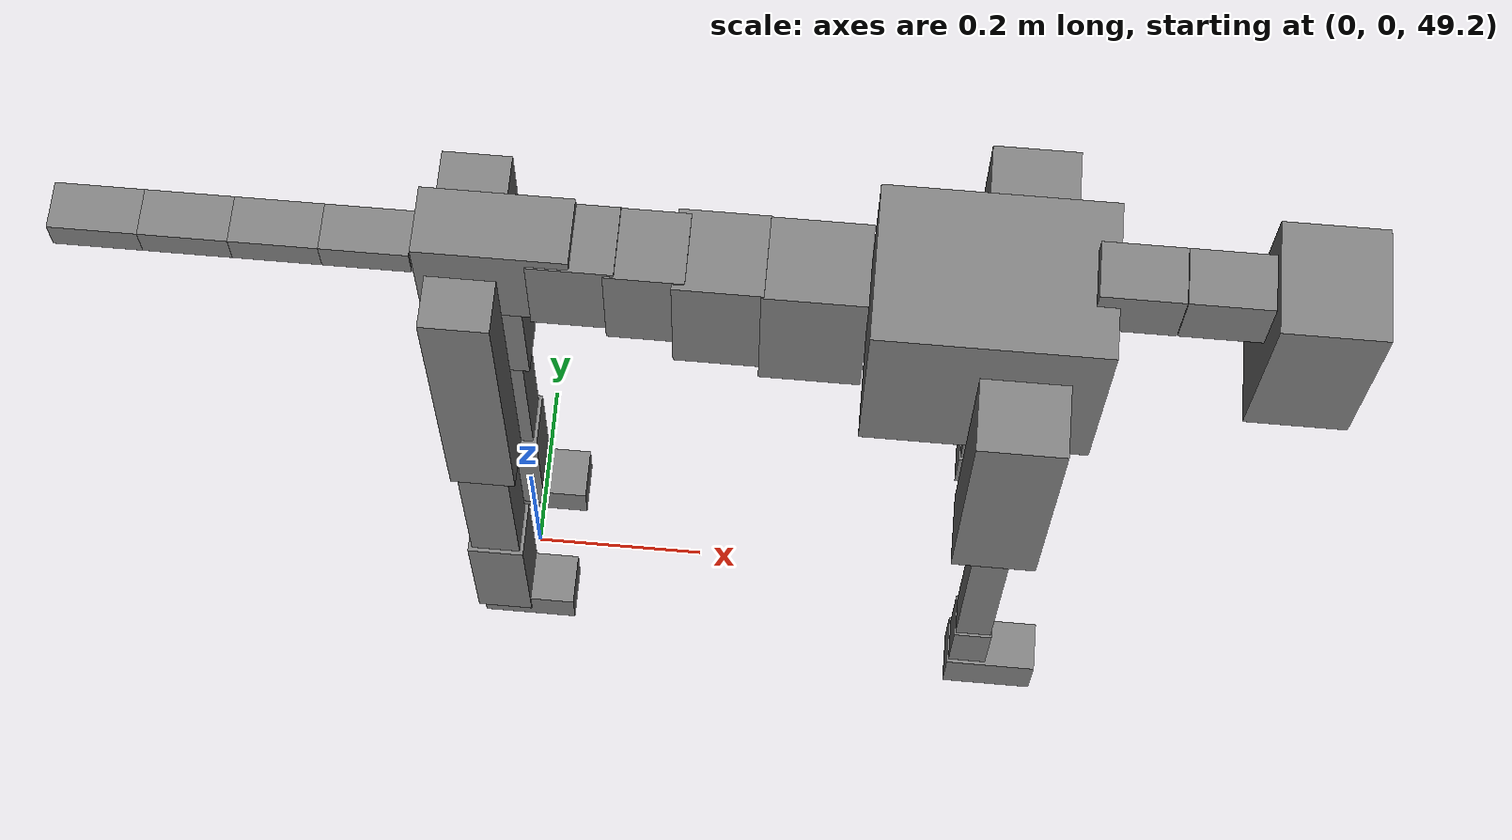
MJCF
<mujoco model="dog">

    <default>
        <joint armature="0.02" stiffness="1" damping="0.2" limited="true"/>
        <geom condim="3" friction="1 0.05 0.05" margin="0.01"/>
        <motor ctrllimited="true" ctrlrange="-1.0 1.0" forcelimited="true" gear="50"/>
    </default>

    <compiler inertiafromgeom="true" angle="radian"/>

    <option timestep="0.016" iterations="50" tolerance="1e-10" solver="Newton" jacobian="dense" cone="pyramidal"/>

    <size nconmax="20000" njmax="60000" nstack="5000000"/>
    <visual>
        <map force="0.1" zfar="30"/>
        <rgba haze="0.15 0.25 0.35 1"/>
        <quality shadowsize="2048"/>
        <global offwidth="800" offheight="800"/>
    </visual>

    <asset>
        <texture type="skybox" builtin="gradient" rgb1="0.3 0.5 0.7" rgb2="0 0 0" width="512" height="512"/>
        <texture name="texplane" type="2d" builtin="checker" rgb1=".2 .3 .4" rgb2=".1 0.15 0.2" width="512" height="512"
                 mark="cross" markrgb=".8 .8 .8"/>
        <texture name="texgeom" type="cube" builtin="flat" mark="cross" width="127" height="1278" rgb1="0.8 0.6 0.4"
                 rgb2="0.8 0.6 0.4" markrgb="1 1 1" random="0.01"/>

        <material name="matplane" reflectance="0.3" texture="texplane" texrepeat="1 1" texuniform="true"/>
        <material name="matgeom" texture="texgeom" texuniform="true" rgba="0.8 0.6 .4 1"/>
    </asset>

    <worldbody>
        <geom name="floor" pos="0 0 0" size="0 0 .25" type="plane" material="matplane" condim="3"/>

        <light directional="false" diffuse=".2 .2 .2" specular="0 0 0" pos="0 0 5" dir="0 0 -1" castshadow="false"/>
        <light mode="targetbodycom" target="torso" directional="false" diffuse=".8 .8 .8" specular="0.3 0.3 0.3"
               pos="0 0 4.0" dir="0 0 -1"/>

        <body name="root" pos="0 0 50">
            <freejoint name="root_1"/>
            <geom type="box" pos="0 0 -0.02" size="0.0774  0.0358  0.063" density="2030"/>

            <body name="spine1" pos="0.054 0 0">
                <joint name="spine1_y" axis="0 1 0" range="0 0.7" limited="true"/>
                <geom type="box" pos="0.02375 0 -0.03" size="0.04375  0.0375  0.05985" density="2030"/>

                <body name="spine2" pos="0.0612 0 0">
                    <joint name="spine2_y" axis="0 1 0" range="-0.15 0.15" limited="true"/>
                    <geom type="box" pos="0.03555  0  -0.04" size="0.04055  0.039  0.06615" density="2030"/>

                    <body name="spine3" pos="0.0730 0 0">
                        <joint name="spine3_y" axis="0 1 0" range="-0.15 0.15" limited="true"/>
                        <geom type="box" pos="0.03555  0  -0.057" size="0.04555  0.0445  0.081" density="2030"/>

                        <body name="spine4" pos="0.0780 0 0">
                            <joint name="spine4_y" axis="0 1 0" range="-0.15 0.15" limited="true"/>
                            <geom type="box" pos="0.05265  0  -0.07" size="0.05265  0.045  0.09135" density="2030"/>

                            <body name="torso" pos="0.1082 0 0">
                                <joint name="torso_y" axis="0 1 0" range="-0.15 0.15" limited="true"/>
                                <geom type="box" pos="0.11925  0  -0.085" size="0.11925  0.085  0.11745"
                                      density="2030"/>

                                <body name="neck1" pos="0.2160  0   0.0180">
                                    <joint name="neck1_y" axis="0 1 0" range="-1.2  -1" limited="true"/>
                                    <geom type="box" pos="0.0423  0  0" size="0.0423  0.03  0.036" density="2325"/>

                                    <body name="neck2" pos="0.0853  0  0">
                                        <joint name="neck2_y" axis="0 1 0" range="0.1  0" limited="true"/>
                                        <geom type="box" pos="0.0423  0  0" size="0.0423  0.03  0.036" density="2325"/>

                                        <body name="head" pos="0.0853  0  0">
                                            <joint name="head_y" axis="0 1 0" range="-0.3  -0.2" limited="true"/>
                                            <geom type="box" pos="0.0531  0  -0.055" size="0.0531  0.06  0.1044"
                                                  density="4030"/>

                                        </body>
                                    </body>
                                </body>

                                <body name="front_shoulder" pos="0.156  0   -0.0480">
                                    <joint name="front_shoulder_y" axis="0 1 0" range="-1 1.5" limited="true"/>
                                    <geom type="box" pos="0 0.13 -0.1276" size="0.0451  0.0385  0.1542" density="1158"/>
                                    <geom type="box" pos="0 -0.13 -0.1276" size="0.0451  0.0385  0.1542"
                                          density="1158"/>

                                    <body name="front_elbow" pos="0  0  -0.2551">
                                        <joint name="front_elbow_y" axis="0 1 0" range="-2 0" limited="true"/>
                                        <geom type="box" pos="0 0.13 -0.1518" size="0.0201  0.0206  0.1518"
                                              density="1081"/>
                                        <geom type="box" pos="0 -0.13 -0.1518" size="0.0201  0.0206  0.1518"
                                              density="1081"/>

                                        <body name="front_wrist" pos="0  0  -0.3036">
                                            <joint name="front_wrist_y" axis="0 1 0" range="-0.2 0" limited="true"/>
                                            <geom type="box" pos="0 0.13 -0.0438" size="0.0214  0.0238  0.0570"
                                                  density="1664"/>
                                            <geom type="box" pos="0 -0.13 -0.0438" size="0.0214  0.0238  0.0570"
                                                  density="1664"/>

                                            <body name="front_finger_end" pos="0  0  -0.0876">
                                                <joint name="front_finger_y" axis="0 1 0" range="-0.4 1"
                                                       limited="true"/>
                                                <geom type="box" pos="0.0279  0.13  -0.0178"
                                                      size="0.0512  0.0279  0.0328" density="1515"/>
                                                <geom type="box" pos="0.0279  -0.13  -0.0178"
                                                      size="0.0512  0.0279  0.0328" density="1515"/>

                                            </body>

                                        </body>
                                    </body>
                                </body>

                            </body>
                        </body>
                    </body>
                </body>
            </body>

            <body name="back_hip" pos="-0.03 0 -0.018">
                <joint name="back_hip_y" axis="0 1 0" range="-1.5 0.3" limited="true"/>
                <geom type="box" pos="0 0.07 -0.1739" size="0.0357  0.0280  0.1967" density="1154"/>
                <geom type="box" pos="0 -0.07 -0.1739" size="0.0357  0.0280  0.1967" density="1154"/>

                <body name="back_knee" pos="0  0  -0.3478">
                    <joint name="back_knee_y" axis="0 1 0" range="0 2.8" limited="true"/>
                    <geom type="box" pos="0 0.07 -0.1177" size="0.0280  0.0276  0.1333" density="1227"/>
                    <geom type="box" pos="0 -0.07 -0.1177" size="0.0280  0.0276  0.1333" density="1227"/>

                    <body name="back_ankle" pos="0  0  -0.2355">
                        <joint name="back_ankle_y" axis="0 1 0" range="-2.2 0" limited="true"/>
                        <geom type="box" pos="0 0.07 -0.0791" size="0.0323  0.0323  0.0904" density="1284"/>
                        <geom type="box" pos="0 -0.07 -0.0791" size="0.0323  0.0323  0.0904" density="1284"/>

                        <body name="back_toe_end" pos="0  0  -0.1582">
                            <joint name="back_toe_y" axis="0 1 0" range="-0.4 1" limited="true"/>
                            <geom type="box" pos="0.0297  0.07  -0.0097" size="0.0545  0.0297  0.0247" density="1515"/>
                            <geom type="box" pos="0.0297  -0.07  -0.0097" size="0.0545  0.0297  0.0247" density="1515"/>

                        </body>
                    </body>
                </body>
            </body>

            <body name="tail1" pos="-0.074 0 -0.006">
                <joint name="tail1_y" axis="0 1 0" range="-0.2 0.2" limited="true"/>
                <geom type="box" pos="-0.0536  0  0" size="0.045  0.025  0.0175" density="1587"/>

                <body name="tail2" pos="-0.09 0 0">
                    <joint name="tail2_y" axis="0 1 0" range="-0.2 0.2" limited="true"/>
                    <geom type="box" pos="-0.0536  0  0" size="0.045  0.025  0.0175" density="1587"/>

                    <body name="tail3" pos="-0.09 0 0">
                        <joint name="tail3_y" axis="0 1 0" range="-0.2 0.2" limited="true"/>
                        <geom type="box" pos="-0.0536  0  0" size="0.045  0.025  0.0175" density="1587"/>

                        <body name="tail4" pos="-0.09 0 0">
                            <joint name="tail4_y" axis="0 1 0" range="-0.2 0.2" limited="true"/>
                            <geom type="box" pos="-0.0536  0  0" size="0.045  0.025  0.0175" density="1587"/>

                        </body>
                    </body>
                </body>
            </body>
        </body>
    </worldbody>

    <actuator>
        <motor joint="spine1_y" forcerange="-150 150     "/>
        <motor joint="spine2_y" forcerange="-150 150     "/>
        <motor joint="spine3_y" forcerange="-150 150     "/>
        <motor joint="spine4_y" forcerange="-150 150     "/>
        <motor joint="torso_y" forcerange="-150 150     "/>
        <motor joint="neck1_y" forcerange="-100 100       "/>
        <motor joint="neck2_y" forcerange="-100 100       "/>
        <motor joint="head_y" forcerange="-150 150       "/>
        <motor joint="front_shoulder_y" forcerange="-170.40 186.56"/>
        <motor joint="front_elbow_y" forcerange="-102.65 146.91"/>
        <motor joint="front_wrist_y" forcerange="-114.13 76.21"/>
        <motor joint="front_finger_y" forcerange="-80.96 27.90"/>
        <motor joint="back_hip_y" forcerange="-232.96 340.35"/>
        <motor joint="back_knee_y" forcerange="-242.80 357.96"/>
        <motor joint="back_angle_y" forcerange="-202.84 214.59"/>
        <motor joint="back_toe_y" forcerange="-52.70 105.02"/>
        <motor joint="tail1_y" forcerange="-50 50     "/>
        <motor joint="tail2_y" forcerange="-50 50     "/>
        <motor joint="tail3_y" forcerange="-50 50     "/>
        <motor joint="tail4_y" forcerange="-50 50     "/>
    </actuator>
</mujoco>
